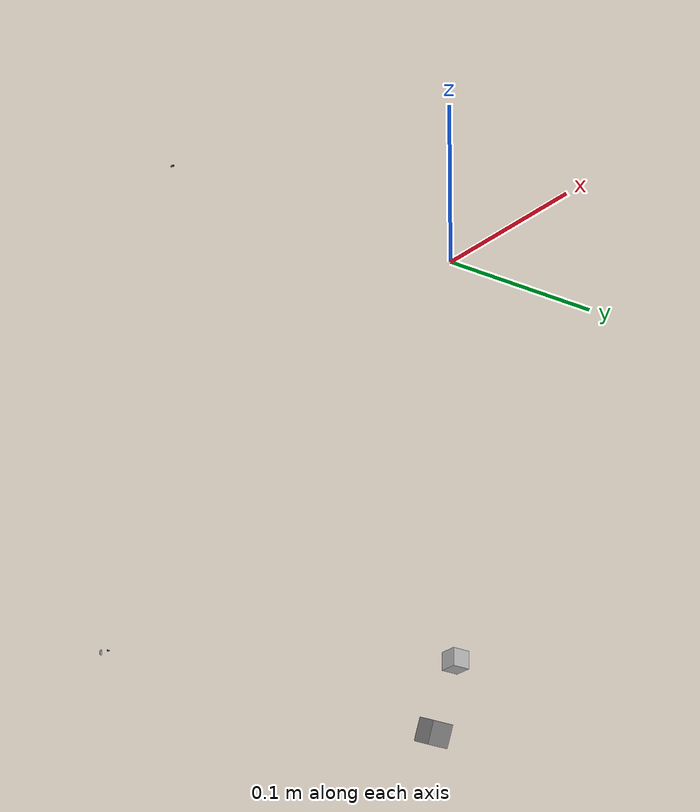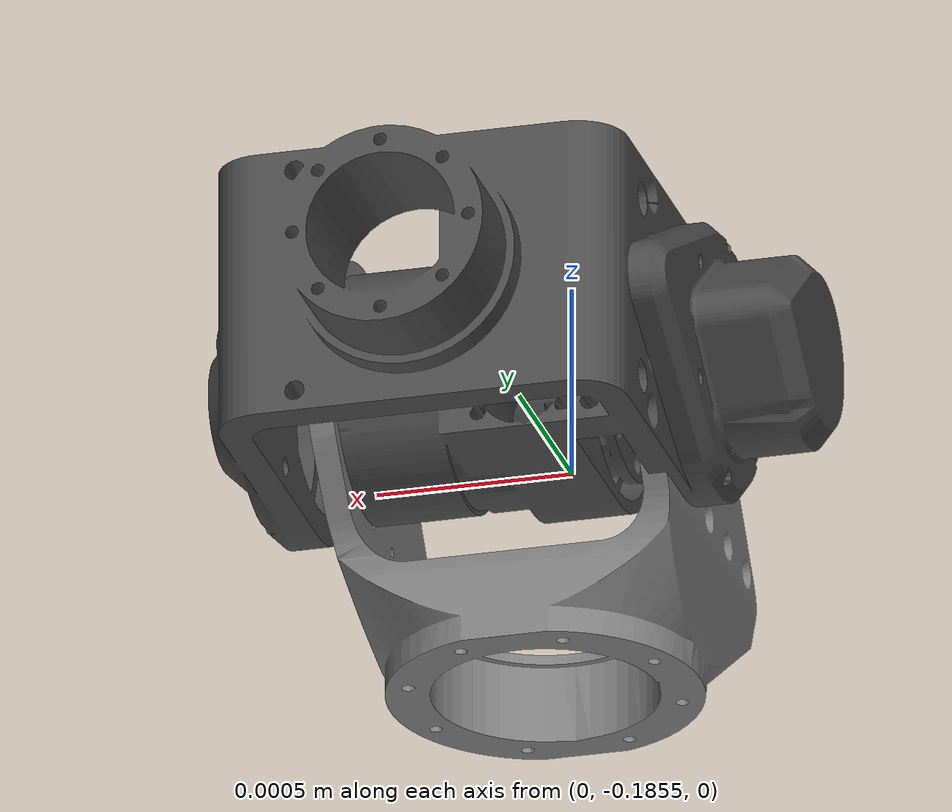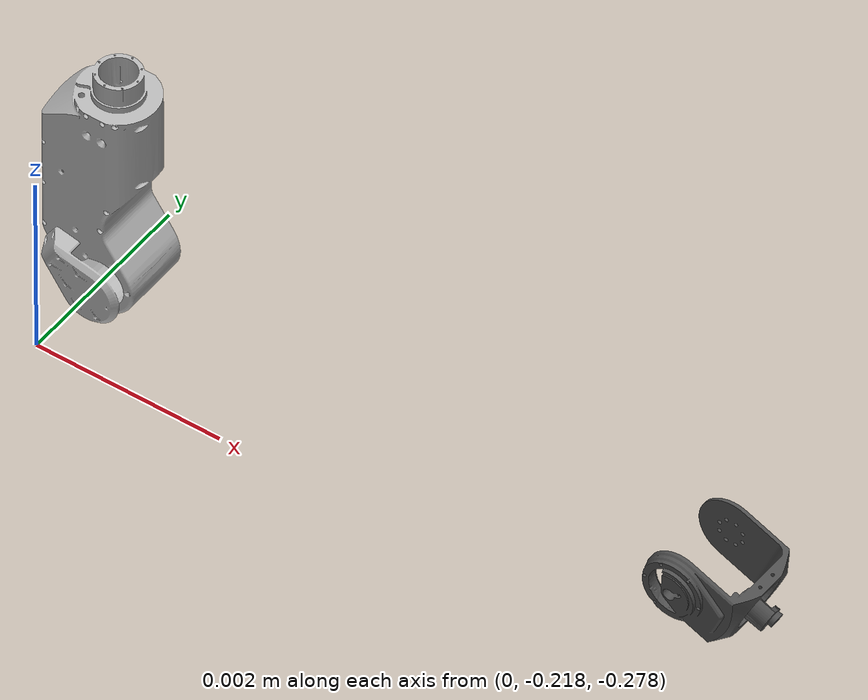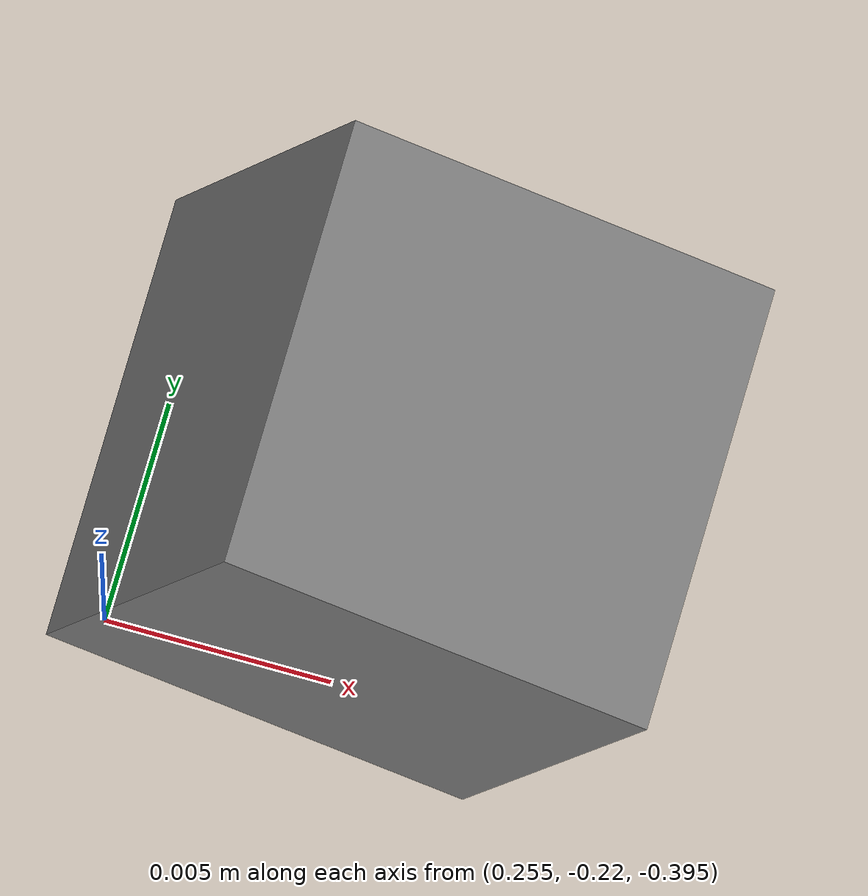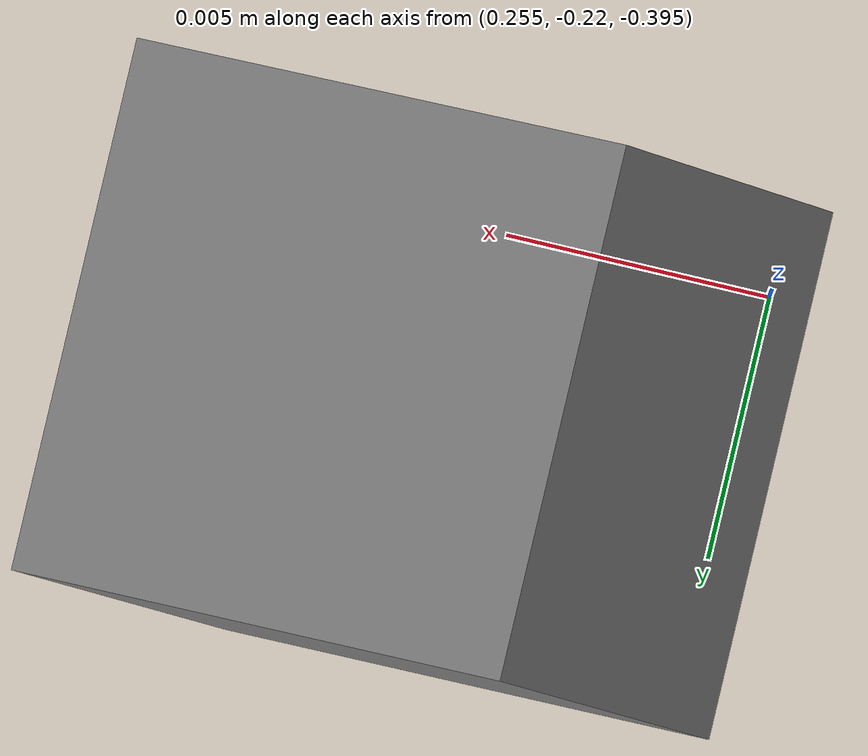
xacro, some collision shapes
<?xml version="1.0"?>
<robot xmlns:sensor="http://playerstage.sourceforge.net/gazebo/xmlschema/#sensor"
       xmlns:controller="http://playerstage.sourceforge.net/gazebo/xmlschema/#controller"
       xmlns:interface="http://playerstage.sourceforge.net/gazebo/xmlschema/#interface"
       xmlns:xacro="http://playerstage.sourceforge.net/gazebo/xmlschema/#interface"
       name="m3" >

 <property name="M_PI" value="3.1415926535897931" />
 <property name="R_ARM" value="ma11" />

 <property name="MESH" value="m3_description/meshes/mid_res" />

<!-- M3 Arm -->
  <include filename="$(find m3_description)/urdf/A1R1_r_arm_defs.urdf.xacro" />

  <property name="M_PI" value="3.1415926535897931" />

  <material name="GreyA"> <!-- darkest -->
	  <color rgba="0.3 0.3 0.3 1.0"/>
  </material>

  <material name="GreyB">
	  <color rgba="0.5 0.5 0.5 1.0"/>
  </material>

  <material name="GreyC">
	  <color rgba="0.7 0.7 0.7 1.0"/>
  </material>

  <m3_r_arm side="r" reflect="1" parent="upper">
	  <origin xyz="0.0 -0.18493 0.2341" rpy="0 0 0" />
  </m3_r_arm>

   <link name="world" />

  <!-- Solid Base -->
  <joint name="base_joint" type="fixed">
	  <origin xyz="0 0 -0.2341" rpy="0 0 0" />
    <parent link="world" />
    <child link="upper" />
  </joint>
  <link name="upper">
	  <inertial>
		  <mass value="1000" />
		  <origin xyz="0 0 0" />
		  <inertia ixx="1000"  ixy="0"  ixz="0" iyy="1000" iyz="0" izz="1000" />
	  </inertial>
	  <visual>
		  <material name="GreyC" />
		  <origin xyz="0 0 0" rpy="0 0 0" />
		  <geometry name="upper_geom">
			  <mesh filename="package://${MESH}/A2R2/A2R2_upper.mesh" />
		  </geometry>
	  </visual>
	  <collision>
		  <origin xyz="0 0 0" rpy="0.0 0.0 0.0 " />
		  <geometry name="upper_collision_geom">
			  <box size="0.01 0.01 0.01" />
		  </geometry>
	  </collision>
  </link>
</robot>

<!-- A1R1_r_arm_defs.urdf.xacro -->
<robot xmlns:sensor="http://playerstage.sourceforge.net/gazebo/xmlschema/#sensor"
       xmlns:controller="http://playerstage.sourceforge.net/gazebo/xmlschema/#controller"
       xmlns:interface="http://playerstage.sourceforge.net/gazebo/xmlschema/#interface">

  <property name="M_PI" value="3.1415926535897931" />

  <macro name="m3_r_shoulder" params="side parent reflect *origin">

    <!-- Shoulder pan -->
    <joint name="m3joint_${R_ARM}_j0" type="revolute">
      <axis xyz="0 -1 0" />
      <insert_block name="origin" /> <!-- transform from parent link to this joint frame -->
      <parent link="${parent}"/>
      <child link="shoulderupper_RIGHT"/>
      <limit effort="40" velocity="${30.0*M_PI/180}" lower="${-80*M_PI/180}" upper="${200*M_PI/180}" />
      <dynamics damping="1.0"/>
    </joint>
    <link name="shoulderupper_RIGHT">
      <inertial>
        <mass value="2.0310" />
	<origin xyz="-0.010946 0.025127 0.000022"/>
	<inertia ixx="0.003461"
	iyy="0.003097"
	izz="0.005416"
	ixy="0.000428"
	ixz="0.000002"
	iyz="0.000000" />
      </inertial>

      <visual>
	      <material name="GreyA" />
	      <origin xyz="0 0 0" rpy="0 0 0 " />
	      <geometry name="r_shoulder_geom">
		      <mesh filename="package://${MESH}/A1R1/A1R1_RT1_shoulderRoll.dae" />
	      </geometry>
      </visual>

      <collision>
	      <origin xyz="0 0 0" rpy="0.0 0.0 0.0 " />
	      <geometry name="r_shoulder_collision_geom">
		      <mesh filename="package://${MESH_COLL}/A1R1/A1R1_RT1_shoulderRoll.dae" />
	      </geometry>
      </collision>
    </link>

    <joint name="m3joint_${R_ARM}_j1" type="revolute">
      <axis xyz="-1 0 0"/>
     <limit effort="40" velocity="${30*M_PI/180}" lower="${-24*M_PI/180}" upper="${150*M_PI/180}" />
      <origin xyz="0 0 0" rpy="0 0 0" />
      <parent link="shoulderupper_RIGHT"/>
      <child link="shoulderpitch_RIGHT"/>
      <dynamics damping="1.0"/>
    </joint>
    <link name="shoulderpitch_RIGHT">

      <inertial>
        <mass value="0.566" />
        <origin xyz="0.000944 -0.026331 -0.043257"/>
	<inertia ixx="0.000754"
	iyy="0.000921"
	izz="0.000834"
	ixy="0.000015"
	ixz="0.000014"
	iyz="0.000142" />
      </inertial>

      <visual>
	      <material name="GreyB" />
	      <origin xyz="0 0 0" rpy="0 0 0 " />
	      <geometry name="shoulderpitch_RIGHT">
		      <mesh filename="package://${MESH}/A1R1/A1R1_RT2_shoulderPitch.dae" />
	      </geometry>
      </visual>

      <collision>
	      <origin xyz="0 0 0" rpy="0.0 0.0 0.0 " />
	      <geometry name="shoulderpitch_RIGHT_collision">
		      <mesh filename="package://${MESH_COLL}/A1R1/A1R1_RT2_shoulderPitch.dae" />
	      </geometry>
      </collision>
    </link>

    <joint name="m3joint_${R_ARM}_j2" type="revolute">
      <axis xyz="0 0 -1" />
      <origin xyz="0 -0.03175 -0.278" rpy="0 0 0" />
      <parent link="shoulderpitch_RIGHT" />
      <child link="bicep_RIGHT"/>
      <limit effort="20" velocity="${50*M_PI/180}" lower="${-85*M_PI/180}" upper="${85*M_PI/180}" />
      <dynamics damping="1.0"/>
    </joint>
    <link name="bicep_RIGHT">
      <inertial>
        <mass value="2.296" />
        <origin xyz="-0.005767 0.084539 0.001385"/>
	<inertia ixx="0.013031"
	iyy="0.002070"
	izz="0.013173"
	ixy="-0.000564"
	ixz="-0.000077"
	iyz="0.000162" />
      </inertial>
      <visual>
	      <material name="GreyC" />
	      <origin xyz="0 0 0" rpy="0 0 0 " />
	      <geometry name="bicep_RIGHT_geom">
		      <mesh filename="package://${MESH}/A1R1/A1R1_RT3_bicep.dae" />
	      </geometry>
      </visual>

      <collision>
	      <origin xyz="0 0 0" rpy="0.0 0.0 0.0 " />
	      <geometry name="bicep_RIGHT_geom_collision">
		      <mesh filename="package://${MESH_COLL}/A1R1/A1R1_RT3_bicep.dae" />
	      </geometry>
      </collision>
    </link>

  </macro>

  <!-- ============================   Upper Arm   ============================ -->

  <macro name="m3_r_upper_arm" params="side parent reflect">

	  <joint name="m3joint_${R_ARM}_j3" type="revolute">
		  <axis xyz="0 -1 0" />
		  <origin xyz="0.00635 0  0" rpy="0 0 0" />
      <parent link="${parent}"/>
      <child link="elbowclevis_RIGHT"/>
	<limit effort="20" velocity="${50*M_PI/180}" lower="${ 0.182*M_PI/180}" upper="${132.8175*M_PI/180}" />
      <dynamics damping="10.0" />
    </joint>
    <link name="elbowclevis_RIGHT">

      <inertial>
        <mass value="0.223" />
        <origin xyz="-0.000002 0.000278 -0.026124"/>
	<inertia ixx="0.000470"
	iyy="0.000233"
	izz="0.000425"
	ixy="0.000000"
	ixz="0.000000"
	iyz="0.000019" />
      </inertial>

      <visual>
	      <material name="GreyA" />
	      <origin xyz="0 0 0" rpy="0 0 0 " />
	      <geometry name="elbowclevis_RIGHT_geom">
		      <mesh filename="package://${MESH}/A1R1/A1R1_RT4_elbow.dae" />
	      </geometry>
      </visual>

      <collision>
	      <origin xyz="0 0 0" rpy="0.0 0.0 0.0 " />
	      <geometry name="elbowclevis_RIGHT_collision">
		      <mesh filename="package://${MESH_COLL}/A1R1/A1R1_RT4_elbow.dae" />
	      </geometry>
      </collision>

    </link>

    <joint name="m3joint_${R_ARM}_j4" type="revolute">
	    <axis xyz="0 0 -1" />
      <limit effort="4" velocity="${150*M_PI/180}" lower="${-49.4*M_PI/180}" upper="${229.4*M_PI/180}" />
      <origin xyz="0 0 -0.27747" rpy="0 0 0" />
      <parent link="elbowclevis_RIGHT"/>
      <child link="wrist_RIGHT"/>
      <dynamics damping="1.0"/>
    </joint>
    <link name="wrist_RIGHT">

      <inertial>
        <mass value="1.468" />
        <origin xyz="-0.004404 0.000124 0.130931"/>
	<inertia ixx="0.006099"
	iyy="0.006120"
	izz="0.001179"
	ixy="0.000004"
	ixz="-0.000043"
	iyz="0.000015" />
      </inertial>

      <visual>
	      <material name="GreyC" />
	      <origin xyz="0 0 0" rpy="0 0 0 " />
	      <geometry name="wrist_RIGHT_geom">
		      <mesh filename="package://${MESH}/A1R1/A1R1_RT5_forearmRoll.dae" />
	      </geometry>
      </visual>

      <collision>
	      <origin xyz="0 0 0" rpy="0.0 0.0 0.0 " />
	      <geometry name="wrist_RIGHT_collision">
		      <mesh filename="package://${MESH_COLL}/A1R1/A1R1_RT5_forearmRoll.dae" />
	      </geometry>
      </collision>
    </link>

  </macro>

  <!-- ============================   Forearm   ============================ -->

  <macro name="m3_r_forearm" params="side parent reflect">

	  <joint name="m3joint_${R_ARM}_j5" type="revolute">
      <dynamics damping="1.0" />
		  <axis xyz="0 -1 0" />
      <origin xyz="0 0 0" rpy="0 0 0" />
      <parent link="${parent}"/>
      <child link="w_differential_RIGHT"/>
	<limit effort="8" velocity="${40*M_PI/180}" lower="${-58.83*M_PI/180}" upper="${58.83*M_PI/180}" />
      <dynamics damping="1.0"/>
    </joint>
    <link name="w_differential_RIGHT">

      <inertial>
        <mass value="0.278" />
        <origin xyz="0 0 0" />
        <inertia ixx="0" ixy="0" ixz="0"
                 iyy="0" iyz="0"
                 izz="0" />
      </inertial>

      <visual>
	      <material name="GreyB" />
	      <origin xyz="0 0 0" rpy="0 0 0 " />
	      <geometry name="w_differential_RIGHT_geom">
		      <box size="0.01 0.01 0.01" />
	      </geometry>
      </visual>

      <collision>
	      <origin xyz="0 0 0" rpy="0.0 0.0 0.0 " />
	      <geometry name="w_differential_RIGHT_collision">
		      <box size="0.01 0.01 0.01" />
	      </geometry>
      </collision>
    </link>

    <joint name="m3joint_${R_ARM}_j6" type="revolute">
	    <axis xyz="-1 0 0" />
      <limit effort="8" velocity="${40*M_PI/180}" lower="${-60*M_PI/180}" upper="${60*M_PI/180}" />
      <origin xyz="0 0 0" rpy="0 0 0" />
      <parent link="w_differential_RIGHT"/>
      <child link="handmount_RIGHT"/>
      <dynamics damping="1.0"/>
    </joint>
    <link name="handmount_RIGHT">

      <inertial>
        <mass value="0.093" />
        <origin xyz="0 0 0" />
        <inertia ixx="0" ixy="0" ixz="0"
                 iyy="0" iyz="0"
                 izz="0" />
      </inertial>

      <visual>
	      <material name="GreyA" />
	      <origin xyz="0 0 0" rpy="0 0 0 " />
	      <geometry name="handmount_RIGHT_geom">
		       <mesh filename="package://${MESH}/A1R1/A1R1_T7_wristYaw.dae" />
	      </geometry>
      </visual>

      <collision>
	      <origin xyz="0 0 0" rpy="0.0 0.0 0.0 " />
	      <geometry name="handmount_RIGHT_collision">
		      <mesh filename="package://${MESH_COLL}/A1R1/A1R1_T7_wristYaw.dae" />
	      </geometry>
      </collision>
    </link>

  </macro>

  <macro name="m3_r_arm" params="side parent reflect *origin">
    <m3_r_shoulder side="${side}" reflect="${reflect}" parent="${parent}">
      <insert_block name="origin" />
    </m3_r_shoulder>
    <m3_r_upper_arm side="${side}" reflect="${reflect}" parent="bicep_RIGHT" />
    <m3_r_forearm side="${side}" reflect="${reflect}" parent="wrist_RIGHT" />
  </macro>

</robot>
